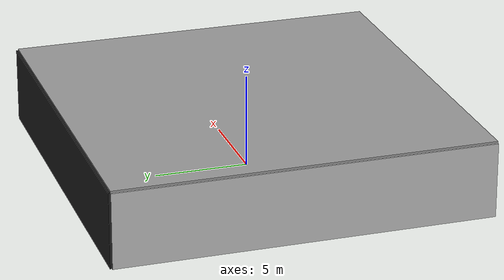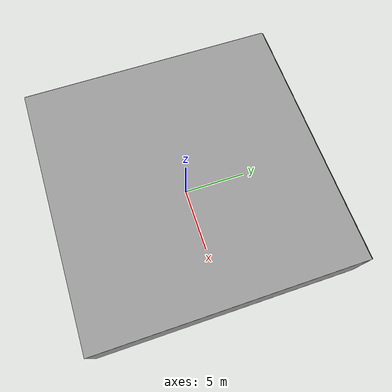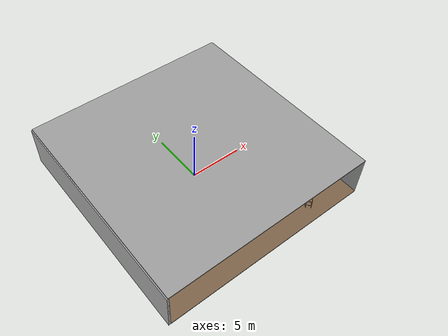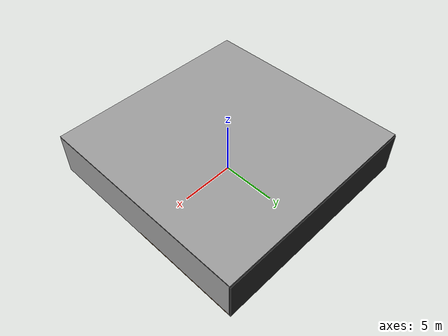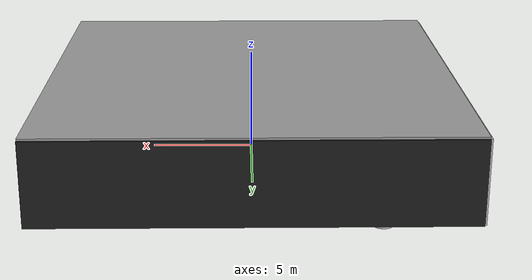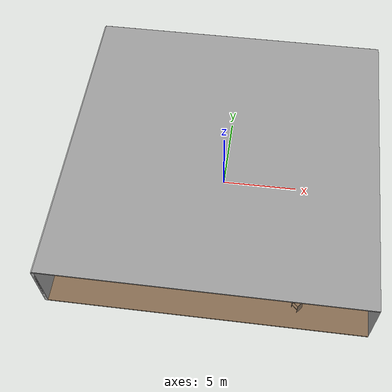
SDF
<sdf version="1.4">
 <world name="default">
  <physics type="ode">
   <max_step_size>0.001</max_step_size>
   <real_time_factor>1</real_time_factor>
   <real_time_update_rate>1000</real_time_update_rate>
   <gravity>0 0 -9.8</gravity>
  </physics>
  <scene><ambient>0.4 0.4 0.4 1</ambient><background>0.7 0.7 0.7 1</background><shadows>1</shadows></scene>
  <model name="Surrounding">
   <static>1</static>
   <link name="Ceiling">
    <collision name="Ceiling_Collision"><geometry><box><size>20 20 0.1</size></box></geometry></collision>
    <visual name="Ceiling_Visual">
     <geometry><box><size>20 20 0.1</size></box></geometry>
     <material>
      <script><uri>file://media/materials/scripts/gazebo.material</uri><name>Gazebo/GreyGradientSky</name></script>
     </material>
    </visual>
    <pose>0 0 4.05 0 0 0</pose>
   </link>
   <link name="Wall_South">
    <collision name="Wall_South_Collision">
     <geometry><box><size>20 0 4</size></box></geometry>
     <pose>0 0 2 0 -0 0</pose>
    </collision>
    <visual name="Wall_South_Visual">
     <pose>0 0 2 0 -0 0</pose>
     <geometry><box><size>20 0 4</size></box></geometry>
     <material>
      <script><uri>file://media/materials/scripts/gazebo.material</uri><name>Gazebo/GreyTransparent</name></script>
     </material>
    </visual>
    <velocity_decay><linear>0</linear><angular>0</angular></velocity_decay>
    <pose>0 -10 0 0 -0 0</pose>
   </link>
   <link name="Wall_East">
    <collision name="Wall_21_Collision">
     <geometry><box><size>20 0 4</size></box></geometry>
     <pose>0 0 2 0 -0 0</pose>
    </collision>
    <visual name="Wall_21_Visual">
     <pose>0 0 2 0 -0 0</pose>
     <geometry><box><size>20 0 4</size></box></geometry>
     <material>
      <script><uri>file://media/materials/scripts/gazebo.material</uri><name>Gazebo/LightOff</name></script>
     </material>
    </visual>
    <velocity_decay><linear>0</linear><angular>0</angular></velocity_decay>
    <pose>10 0 0 0 -0 1.5708</pose>
   </link>
   <link name="Wall_North">
    <collision name="Wall_22_Collision">
     <geometry><box><size>20 0.2 4</size></box></geometry>
     <pose>0 0 2 0 -0 0</pose>
    </collision>
    <visual name="Wall_22_Visual">
     <pose>0 0 2 0 -0 0</pose>
     <geometry><box><size>20 0.2 4</size></box></geometry>
     <material>
      <script><uri>file://media/materials/scripts/gazebo.material</uri><name>Gazebo/FlatBlack</name></script>
     </material>
    </visual>
    <velocity_decay><linear>0</linear><angular>0</angular></velocity_decay>
    <pose>0 10 0 0 -0 0</pose>
   </link>
   <link name="Wall_West">
    <collision name="Wall_23_Collision">
     <geometry><box><size>20 0.2 4</size></box></geometry>
     <pose>0 0 2 0 -0 0</pose>
    </collision>
    <visual name="Wall_23_Visual">
     <pose>0 0 2 0 -0 0</pose>
     <geometry><box><size>20 0.2 4</size></box></geometry>
     <material>
      <script><uri>file://media/materials/scripts/gazebo.material</uri><name>Gazebo/LightOn</name></script>
     </material>
    </visual>
    <velocity_decay><linear>0</linear><angular>0</angular></velocity_decay>
    <pose>-10 0 0 0 0 -1.5708</pose>
   </link>
   <link name="Ground_link">
    <collision name="collision">
     <pose>0 0 .05 0 -0 0</pose>
     <geometry><box><size>20 20 0.1</size></box></geometry>
    </collision>
    <visual name="visual">
     <pose>0 0 .05 0 -0 0</pose>
     <geometry><box><size>20 20 0.1</size></box></geometry>
     <material>
      <script><uri>file://media/materials/scripts/gazebo.material</uri><name>Gazebo/WoodFloor</name></script>
     </material>
    </visual>
   </link>
   <static>1</static>
  </model>
  <spherical_coordinates>
   <surface_model>EARTH_WGS84</surface_model>
   <latitude_deg>0</latitude_deg>
   <longitude_deg>0</longitude_deg>
   <elevation>0</elevation>
   <heading_deg>0</heading_deg>
  </spherical_coordinates>
  <light name="lightball_0" type="diffuse">
   <diffuse>0.8 0.8 0.8 1</diffuse>
   <specular>0.2 0.2 0.2 1</specular>
   <attenuation>
    <range>100</range>
    <constant>0.7</constant>
    <linear>0.01</linear>
    <quadratic>0.001</quadratic>
   </attenuation>
   <direction>-0.5 0.1 -0.9</direction>
   <pose>1.53600034438 8.48510872578 2.06781811677 0 0 0</pose>
  </light>
  <light name="lightball_1" type="diffuse">
   <diffuse>0.8 0.8 0.8 1</diffuse>
   <specular>0.2 0.2 0.2 1</specular>
   <attenuation>
    <range>100</range>
    <constant>0.7</constant>
    <linear>0.01</linear>
    <quadratic>0.001</quadratic>
   </attenuation>
   <direction>-0.5 0.1 -0.9</direction>
   <pose>-8.68360787192 -0.654340707567 3.60048351991 0 0 0</pose>
  </light>
  <light name="lightball_2" type="diffuse">
   <diffuse>0.8 0.8 0.8 1</diffuse>
   <specular>0.2 0.2 0.2 1</specular>
   <attenuation>
    <range>100</range>
    <constant>0.7</constant>
    <linear>0.01</linear>
    <quadratic>0.001</quadratic>
   </attenuation>
   <direction>-0.5 0.1 -0.9</direction>
   <pose>-7.921889376 7.1602127831 1.18551627344 0 0 0</pose>
  </light>
  <light name="lightball_3" type="diffuse">
   <diffuse>0.8 0.8 0.8 1</diffuse>
   <specular>0.2 0.2 0.2 1</specular>
   <attenuation>
    <range>100</range>
    <constant>0.7</constant>
    <linear>0.01</linear>
    <quadratic>0.001</quadratic>
   </attenuation>
   <direction>-0.5 0.1 -0.9</direction>
   <pose>-5.96328882726 8.62985836863 2.07236801057 0 0 0</pose>
  </light>
  <light name="lightball_4" type="diffuse">
   <diffuse>0.8 0.8 0.8 1</diffuse>
   <specular>0.2 0.2 0.2 1</specular>
   <attenuation>
    <range>100</range>
    <constant>0.7</constant>
    <linear>0.01</linear>
    <quadratic>0.001</quadratic>
   </attenuation>
   <direction>-0.5 0.1 -0.9</direction>
   <pose>-6.97340697655 9.18786205295 1.90978503197 0 0 0</pose>
  </light>
  <include><uri>model://table</uri><pose>-7.53466505221 -1.74461773522 0 0 0 0.0186031933324</pose></include>
  <include>
   <uri>model://textured_shapes</uri>
   <pose>-5.44961180609 7.26483784249 0 0 0 0.206638136867</pose>
  </include>
  <include>
   <uri>model://construction_cone</uri>
   <pose>0.488113646779 0.759614172972 0 0 0 0.319046280836</pose>
  </include>
  <include><uri>model://cabinet</uri><pose>5.56249949388 -8.66482209834 0 0 0 0.821890774765</pose></include>
  <include><uri>model://cabinet</uri><pose>6.75607388371 -2.22028758643 0 0 0 0.113645263582</pose></include>
 </world>
</sdf>

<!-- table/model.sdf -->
<sdf version="1.5">
  <model name="table">
    <static>true</static>
    <link name="link">
      <collision name="surface">
        <pose>0 0 1.0 0 0 0</pose>
        <geometry>
          <box>
            <size>1.5 0.8 0.03</size>
          </box>
        </geometry>
        <surface>
          <friction>
            <ode>
              <mu>0.6</mu>
              <mu2>0.6</mu2>
            </ode>
          </friction>
        </surface>
      </collision>
      <visual name="visual1">
        <pose>0 0 1.0 0 0 0</pose>
        <geometry>
          <box>
            <size>1.5 0.8 0.03</size>
          </box>
        </geometry>
        <material>
          <script>
            <uri>model://media/materials/scripts/gazebo.material</uri>
            <name>Gazebo/Wood</name>
          </script>
        </material>
      </visual>
      <collision name="front_left_leg">
        <pose>0.68 0.38 0.5 0 0 0</pose>
        <geometry>
          <cylinder>
            <radius>0.02</radius>
            <length>1.0</length>
          </cylinder>
        </geometry>
      </collision>
      <visual name="front_left_leg">
        <pose>0.68 0.38 0.5 0 0 0</pose>
        <geometry>
          <cylinder>
            <radius>0.02</radius>
            <length>1.0</length>
          </cylinder>
        </geometry>
        <material>
          <script>
            <uri>model://media/materials/scripts/gazebo.material</uri>
            <name>Gazebo/Grey</name>
          </script>
        </material>
      </visual>
      <collision name="front_right_leg">
        <pose>0.68 -0.38 0.5 0 0 0</pose>
        <geometry>
          <cylinder>
            <radius>0.02</radius>
            <length>1.0</length>
          </cylinder>
        </geometry>
      </collision>
      <visual name="front_right_leg">
        <pose>0.68 -0.38 0.5 0 0 0</pose>
        <geometry>
          <cylinder>
            <radius>0.02</radius>
            <length>1.0</length>
          </cylinder>
        </geometry>
        <material>
          <script>
            <uri>model://media/materials/scripts/gazebo.material</uri>
            <name>Gazebo/Grey</name>
          </script>
        </material>
      </visual>
      <collision name="back_right_leg">
        <pose>-0.68 -0.38 0.5 0 0 0</pose>
        <geometry>
          <cylinder>
            <radius>0.02</radius>
            <length>1.0</length>
          </cylinder>
        </geometry>
      </collision>
      <visual name="back_right_leg">
        <pose>-0.68 -0.38 0.5 0 0 0</pose>
        <geometry>
          <cylinder>
            <radius>0.02</radius>
            <length>1.0</length>
          </cylinder>
        </geometry>
        <material>
          <script>
            <uri>model://media/materials/scripts/gazebo.material</uri>
            <name>Gazebo/Grey</name>
          </script>
        </material>
      </visual>
      <collision name="back_left_leg">
        <pose>-0.68 0.38 0.5 0 0 0</pose>
        <geometry>
          <cylinder>
            <radius>0.02</radius>
            <length>1.0</length>
          </cylinder>
        </geometry>
      </collision>
      <visual name="back_left_leg">
        <pose>-0.68 0.38 0.5 0 0 0</pose>
        <geometry>
          <cylinder>
            <radius>0.02</radius>
            <length>1.0</length>
          </cylinder>
        </geometry>
        <material>
          <script>
            <uri>model://media/materials/scripts/gazebo.material</uri>
            <name>Gazebo/Grey</name>
          </script>
        </material>
      </visual>
    </link>
  </model>
</sdf>

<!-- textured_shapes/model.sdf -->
<sdf version="1.6">
  <model name="textured_shapes">
    <pose>0 0 0.5 0 0 0</pose>
    <link name="box">
      <pose>0 -1.5 0 0 0 0</pose>
      <collision name="collision">
        <geometry>
          <box>
            <size>1 1 1</size>
          </box>
        </geometry>
      </collision>
      <visual name="visual">
        <geometry>
          <box>
            <size>1 1 1</size>
          </box>
        </geometry>
        <material>
          <script>
            <uri>model://../model_source/models/textured_shapes/materials/scripts</uri>
            <uri>model://../model_source/models/textured_shapes/materials/textures</uri>
            <name>TexturedShape/Squares</name>
          </script>
        </material>
      </visual>
    </link>
    <link name="sphere">
      <collision name="collision">
        <geometry>
          <sphere>
            <radius>0.5</radius>
          </sphere>
        </geometry>
      </collision>
      <visual name="visual">
        <geometry>
          <sphere>
            <radius>0.5</radius>
          </sphere>
        </geometry>
        <material>
          <script>
            <uri>model://../model_source/models/textured_shapes/materials/scripts</uri>
            <uri>model://../model_source/models/textured_shapes/materials/textures</uri>
            <name>TexturedShape/Squares</name>
          </script>
        </material>
      </visual>
    </link>
    <link name="cylinder">
      <pose>0 1.5 0 0 0 0</pose>
      <collision name="collision">
        <geometry>
          <cylinder>
            <radius>0.5</radius>
            <length>1</length>
          </cylinder>
        </geometry>
      </collision>
      <visual name="visual">
        <geometry>
          <cylinder>
            <radius>0.5</radius>
            <length>1</length>
          </cylinder>
        </geometry>
        <material>
          <script>
            <uri>model://../model_source/models/textured_shapes/materials/scripts</uri>
            <uri>model://../model_source/models/textured_shapes/materials/textures</uri>
            <name>TexturedShape/Squares</name>
          </script>
        </material>
      </visual>
    </link>
  </model>
</sdf>

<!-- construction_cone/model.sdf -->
<sdf version="1.5">
  <model name="Construction Cone">
    <link name="link">
      <collision name="collision">
        <geometry>
          <mesh>
            <scale>10 10 10</scale>
            <uri>file://isr-testbed/construction_cone/meshes/construction_cone.dae</uri>
          </mesh>
        </geometry>
      </collision>
      <visual name="visual">
        <geometry>
          <mesh>
            <scale>10 10 10</scale>
            <uri>file://isr-testbed/construction_cone/meshes/construction_cone.dae</uri>
          </mesh>
        </geometry>
      </visual>
    </link>
  </model>
</sdf>

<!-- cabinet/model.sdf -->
<sdf version="1.5">
  <model name="cabinet">
    <static>true</static>
    <link name="cabinet_bottom_plate">
      <inertial>
        <pose>0 0 -1 0 0 0</pose>
        <inertia>
          <ixx>2.050000</ixx>
          <ixy>0</ixy>
          <ixz>0</ixz>
          <iyy>2.050000</iyy>
          <iyz>0</iyz>
          <izz>2.050000</izz>
        </inertia>
        <mass>25.000000</mass>
      </inertial>
      <collision name="cabinet_bottom_plate_geom">
        <pose>0 0 0.010000 0 0 0</pose>
        <geometry>
          <box>
            <size>0.450000 0.450000 0.020000</size>
          </box>
        </geometry>
      </collision>
      <visual name="cabinet_bottom_plate_geom_visual">
        <pose>0 0 0.010000 0 0 0</pose>
        <geometry>
          <box>
            <size>0.450000 0.450000 0.020000</size>
          </box>
        </geometry>
        <material>
          <script>
            <uri>model://media/materials/scripts/gazebo.material</uri>
            <name>Gazebo/Wood</name>
          </script>
        </material>
      </visual>
      <collision name="cabinet_bottom_plate_geom_cabinet_back_plate">
        <pose>0.235000 0 0.510000 0 0 0</pose>
        <geometry>
          <box>
            <size>0.020000 0.450000 1.020000</size>
          </box>
        </geometry>
      </collision>
      <visual name="cabinet_bottom_plate_geom_cabinet_back_plate_visual">
        <pose>0.235000 0 0.510000 0 0 0</pose>
        <geometry>
          <box>
            <size>0.020000 0.450000 1.020000</size>
          </box>
        </geometry>
        <material>
          <script>
            <uri>model://media/materials/scripts/gazebo.material</uri>
            <name>Gazebo/Wood</name>
          </script>
        </material>
      </visual>
      <collision name="cabinet_bottom_plate_geom_cabinet_left_plate">
        <pose>0 0.235000 0.510000 0 0 0</pose>
        <geometry>
          <box>
            <size>0.450000 0.020000 1.020000</size>
          </box>
        </geometry>
      </collision>
      <visual name="cabinet_bottom_plate_geom_cabinet_left_plate_visual">
        <pose>0 0.235000 0.510000 0 0 0</pose>
        <geometry>
          <box>
            <size>0.450000 0.020000 1.020000</size>
          </box>
        </geometry>
        <material>
          <script>
            <uri>model://media/materials/scripts/gazebo.material</uri>
            <name>Gazebo/Wood</name>
          </script>
        </material>
      </visual>
      <collision name="cabinet_bottom_plate_geom_cabinet_middle_plate">
        <pose>0 0 0.510000 0 0 0</pose>
        <geometry>
          <box>
            <size>0.450000 0.450000 0.020000</size>
          </box>
        </geometry>
      </collision>
      <visual name="cabinet_bottom_plate_geom_cabinet_middle_plate_visual">
        <pose>0 0 0.510000 0 0 0</pose>
        <geometry>
          <box>
            <size>0.450000 0.450000 0.020000</size>
          </box>
        </geometry>
        <material>
          <script>
            <uri>model://media/materials/scripts/gazebo.material</uri>
            <name>Gazebo/Wood</name>
          </script>
        </material>
      </visual>
      <collision name="cabinet_bottom_plate_geom_cabinet_right_plate">
        <pose>0 -0.235000 0.510000 0 0 0</pose>
        <geometry>
          <box>
            <size>0.450000 0.020000 1.020000</size>
          </box>
        </geometry>
      </collision>
      <visual name="cabinet_bottom_plate_geom_cabinet_right_plate_visual">
        <pose>0 -0.235000 0.510000 0 0 0</pose>
        <geometry>
          <box>
            <size>0.450000 0.020000 1.020000</size>
          </box>
        </geometry>
        <material>
          <script>
            <uri>model://media/materials/scripts/gazebo.material</uri>
            <name>Gazebo/Wood</name>
          </script>
        </material>
      </visual>
      <collision name="cabinet_bottom_plate_geom_cabinet_top_plate">
        <pose>0 0 1.010000 0 0 0</pose>
        <geometry>
          <box>
            <size>0.450000 0.450000 0.020000</size>
          </box>
        </geometry>
      </collision>
      <visual name="cabinet_bottom_plate_geom_cabinet_top_plate_visual">
        <pose>0 0 1.010000 0 0 0</pose>
        <geometry>
          <box>
            <size>0.450000 0.450000 0.020000</size>
          </box>
        </geometry>
        <material>
          <script>
            <uri>model://media/materials/scripts/gazebo.material</uri>
            <name>Gazebo/Wood</name>
          </script>
        </material>
      </visual>
    </link>
  </model>
</sdf>
